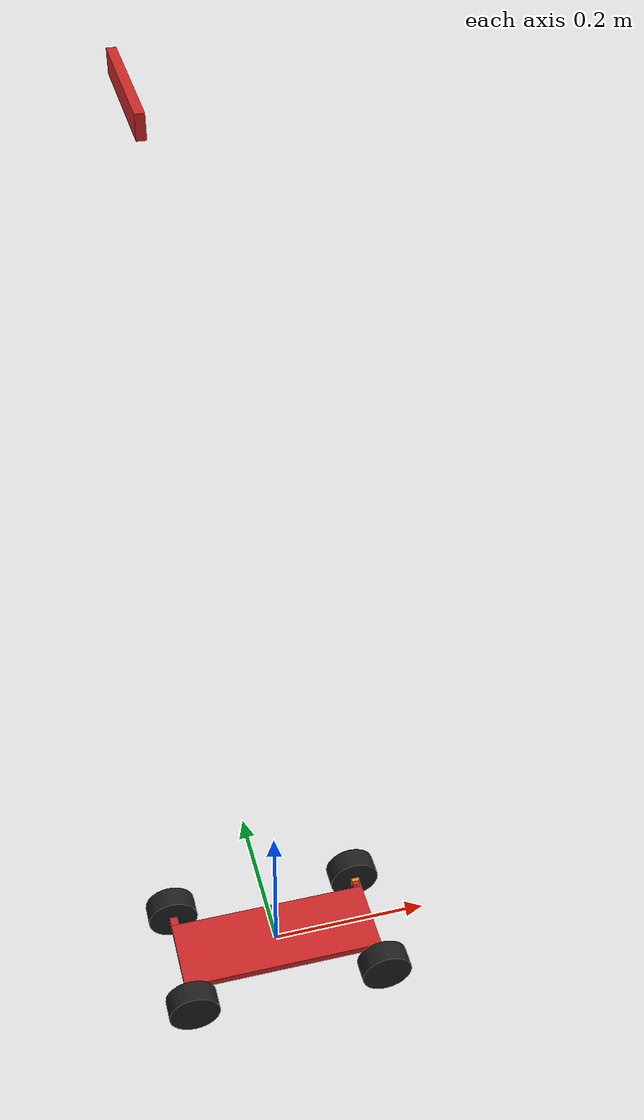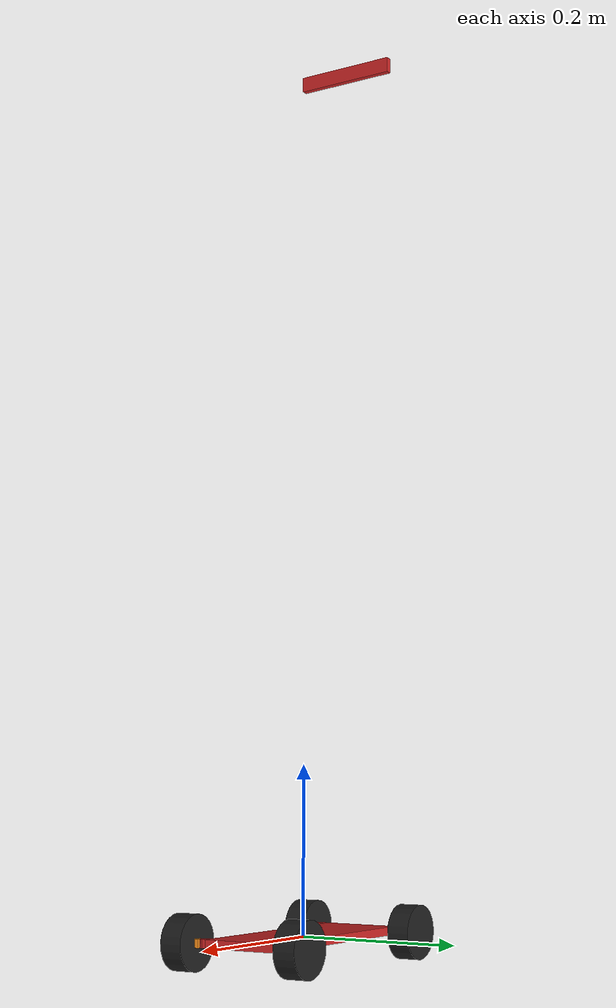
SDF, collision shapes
<sdf version='1.6'>
  <model name='simple_ackermann'>
    <link name='base_link'>
      <pose frame=''>0 0 0 0 -0 0</pose>
      <inertial>
        <pose frame=''>-0.04939 0 0.536585 0 -0 0</pose>
        <mass>2.05</mass>
        <inertia>
          <ixx>0.620661</ixx>
          <ixy>-3.246e-20</ixy>
          <ixz>0.0556707</ixz>
          <iyy>0.631179</iyy>
          <iyz>5.81767e-20</iyz>
          <izz>0.0123103</izz>
        </inertia>
      </inertial>
      <collision name='base_link_collision'>
        <pose frame=''>0 0 0 0 -0 0</pose>
        <geometry>
          <box>
            <size>0.26 0.095 0.01</size>
          </box>
        </geometry>
        <surface>
          <contact>
            <ode/>
          </contact>
          <friction>
            <ode/>
          </friction>
        </surface>
      </collision>
      <collision name='base_link_fixed_joint_lump__collision_collision_1'>
        <pose frame=''>-0.1 0 1.1 0 -0 0</pose>
        <geometry>
          <box>
            <size>0.0078 0.13 0.0192</size>
          </box>
        </geometry>
      </collision>
      <collision name='base_link_fixed_joint_lump__left_front_wheelmount_box_collision_2'>
        <pose frame=''>0.125 0.05 0 0 -0 0</pose>
        <geometry>
          <box>
            <size>0.01 0.005 0.01</size>
          </box>
        </geometry>
        <surface>
          <contact>
            <ode/>
          </contact>
          <friction>
            <ode/>
          </friction>
        </surface>
      </collision>
      <collision name='base_link_fixed_joint_lump__left_front_wheelmount_cylinder_collision_3'>
        <pose frame=''>0.125 0.0525 0 0 -0 0</pose>
        <geometry>
          <cylinder>
            <length>0.01</length>
            <radius>0.005</radius>
          </cylinder>
        </geometry>
        <surface>
          <contact>
            <ode/>
          </contact>
          <friction>
            <ode/>
          </friction>
        </surface>
      </collision>
      <collision name='base_link_fixed_joint_lump__left_rear_wheelmount_collision_4'>
        <pose frame=''>-0.125 0.055 0 0 -0 0</pose>
        <geometry>
          <box>
            <size>0.01 0.015 0.01</size>
          </box>
        </geometry>
        <surface>
          <contact>
            <ode/>
          </contact>
          <friction>
            <ode/>
          </friction>
        </surface>
      </collision>
      <collision name='base_link_fixed_joint_lump__right_front_wheelmount_box_collision_5'>
        <pose frame=''>0.125 -0.05 0 0 -0 0</pose>
        <geometry>
          <box>
            <size>0.01 0.005 0.01</size>
          </box>
        </geometry>
        <surface>
          <contact>
            <ode/>
          </contact>
          <friction>
            <ode/>
          </friction>
        </surface>
      </collision>
      <collision name='base_link_fixed_joint_lump__right_front_wheelmount_cylinder_collision_6'>
        <pose frame=''>0.125 -0.0525 0 0 -0 0</pose>
        <geometry>
          <cylinder>
            <length>0.01</length>
            <radius>0.005</radius>
          </cylinder>
        </geometry>
        <surface>
          <contact>
            <ode/>
          </contact>
          <friction>
            <ode/>
          </friction>
        </surface>
      </collision>
      <collision name='base_link_fixed_joint_lump__right_rear_wheelmount_collision_7'>
        <pose frame=''>-0.125 -0.055 0 0 -0 0</pose>
        <geometry>
          <box>
            <size>0.01 0.015 0.01</size>
          </box>
        </geometry>
        <surface>
          <contact>
            <ode/>
          </contact>
          <friction>
            <ode/>
          </friction>
        </surface>
      </collision>
      <visual name='base_link_fixed_joint_lump__chassis_visual_visual'>
        <pose frame=''>0 0 0 0 -0 0</pose>
        <geometry>
          <box>
            <size>0.26 0.095 0.01</size>
          </box>
        </geometry>
      </visual>
      <visual name='base_link_fixed_joint_lump__visual_visual_1'>
        <pose frame=''>-0.1 0 1.1 0 -0 0</pose>
        <geometry>
          <mesh>
            <scale>1 1 1</scale>
            <uri>model://realsense_camera_ros/meshes/realsense.dae</uri>
          </mesh>
        </geometry>
      </visual>
      <visual name='base_link_fixed_joint_lump__left_front_wheelmount_box_visual_2'>
        <pose frame=''>0.125 0.05 0 0 -0 0</pose>
        <geometry>
          <box>
            <size>0.01 0.005 0.01</size>
          </box>
        </geometry>
        <material>
          <script>
            <name>Gazebo/Red</name>
            <uri>file://media/materials/scripts/gazebo.material</uri>
          </script>
        </material>
      </visual>
      <visual name='base_link_fixed_joint_lump__left_front_wheelmount_cylinder_visual_3'>
        <pose frame=''>0.125 0.0525 0 0 -0 0</pose>
        <geometry>
          <cylinder>
            <length>0.01</length>
            <radius>0.005</radius>
          </cylinder>
        </geometry>
        <material>
          <script>
            <name>Gazebo/Red</name>
            <uri>file://media/materials/scripts/gazebo.material</uri>
          </script>
        </material>
      </visual>
      <visual name='base_link_fixed_joint_lump__left_rear_wheelmount_visual_4'>
        <pose frame=''>-0.125 0.055 0 0 -0 0</pose>
        <geometry>
          <box>
            <size>0.01 0.015 0.01</size>
          </box>
        </geometry>
        <material>
          <script>
            <name>Gazebo/Red</name>
            <uri>file://media/materials/scripts/gazebo.material</uri>
          </script>
        </material>
      </visual>
      <visual name='base_link_fixed_joint_lump__right_front_wheelmount_box_visual_5'>
        <pose frame=''>0.125 -0.05 0 0 -0 0</pose>
        <geometry>
          <box>
            <size>0.01 0.005 0.01</size>
          </box>
        </geometry>
        <material>
          <script>
            <name>Gazebo/Red</name>
            <uri>file://media/materials/scripts/gazebo.material</uri>
          </script>
        </material>
      </visual>
      <visual name='base_link_fixed_joint_lump__right_front_wheelmount_cylinder_visual_6'>
        <pose frame=''>0.125 -0.0525 0 0 -0 0</pose>
        <geometry>
          <cylinder>
            <length>0.01</length>
            <radius>0.005</radius>
          </cylinder>
        </geometry>
        <material>
          <script>
            <name>Gazebo/Red</name>
            <uri>file://media/materials/scripts/gazebo.material</uri>
          </script>
        </material>
      </visual>
      <visual name='base_link_fixed_joint_lump__right_rear_wheelmount_visual_7'>
        <pose frame=''>-0.125 -0.055 0 0 -0 0</pose>
        <geometry>
          <box>
            <size>0.01 0.015 0.01</size>
          </box>
        </geometry>
        <material>
          <script>
            <name>Gazebo/Red</name>
            <uri>file://media/materials/scripts/gazebo.material</uri>
          </script>
        </material>
      </visual>
      <velocity_decay/>
      <velocity_decay/>
      <sensor name='color' type='camera'>
        <always_on>1</always_on>
        <update_rate>60</update_rate>
        <visualize>1</visualize>
        <camera name='rgb_camera'>
          <horizontal_fov>1.047</horizontal_fov>
          <image>
            <width>640</width>
            <height>480</height>
            <format>RGB_INT8</format>
          </image>
          <clip>
            <near>0.1</near>
            <far>100</far>
          </clip>
          <noise>
            <type>gaussian</type>
            <mean>0</mean>
            <stddev>0.007</stddev>
          </noise>
        </camera>
        <pose frame=''>-0.1 0 1.1 0 -0 0</pose>
      </sensor>
      <sensor name='ired1' type='camera'>
        <always_on>1</always_on>
        <update_rate>60</update_rate>
        <visualize>0</visualize>
        <camera name='ir_1_camera'>
          <horizontal_fov>1.047</horizontal_fov>
          <image>
            <width>640</width>
            <height>480</height>
            <format>L_INT8</format>
          </image>
          <clip>
            <near>0.1</near>
            <far>100</far>
          </clip>
          <noise>
            <type>gaussian</type>
            <mean>0</mean>
            <stddev>0.007</stddev>
          </noise>
        </camera>
        <pose frame=''>-0.1 0 1.1 0 -0 0</pose>
      </sensor>
      <sensor name='ired2' type='camera'>
        <always_on>1</always_on>
        <update_rate>60</update_rate>
        <visualize>0</visualize>
        <camera name='ir_2_camera'>
          <horizontal_fov>1.047</horizontal_fov>
          <image>
            <width>640</width>
            <height>480</height>
            <format>L_INT8</format>
          </image>
          <clip>
            <near>0.1</near>
            <far>100</far>
          </clip>
          <noise>
            <type>gaussian</type>
            <mean>0</mean>
            <stddev>0.007</stddev>
          </noise>
        </camera>
        <pose frame=''>-0.1 0 1.1 0 -0 0</pose>
      </sensor>
      <sensor name='depth' type='depth'>
        <always_on>1</always_on>
        <update_rate>60</update_rate>
        <visualize>0</visualize>
        <camera name='depth_camera'>
          <horizontal_fov>1.047</horizontal_fov>
          <image>
            <width>640</width>
            <height>480</height>
          </image>
          <clip>
            <near>0.1</near>
            <far>100</far>
          </clip>
          <noise>
            <type>gaussian</type>
            <mean>0</mean>
            <stddev>0.007</stddev>
          </noise>
        </camera>
        <pose frame=''>-0.1 0 1.1 0 -0 0</pose>
      </sensor>
      <velocity_decay/>
      <velocity_decay/>
      <velocity_decay/>
      <velocity_decay/>
      <velocity_decay/>
      <gravity>1</gravity>
      <velocity_decay/>
    </link>
    <link name='left_kingpin'>
      <pose frame=''>0.125 0.0525 0 0 -0 0</pose>
      <inertial>
        <pose frame=''>0 0.0075 0 0 -0 0</pose>
        <mass>0.005</mass>
        <inertia>
          <ixx>5.20833e-08</ixx>
          <ixy>0</ixy>
          <ixz>0</ixz>
          <iyy>8.33333e-08</iyy>
          <iyz>0</iyz>
          <izz>5.20833e-08</izz>
        </inertia>
      </inertial>
      <collision name='left_kingpin_collision'>
        <pose frame=''>0 0.0075 0 0 -0 0</pose>
        <geometry>
          <box>
            <size>0.01 0.005 0.01</size>
          </box>
        </geometry>
        <surface>
          <contact>
            <ode/>
          </contact>
          <friction>
            <ode/>
          </friction>
        </surface>
      </collision>
      <visual name='left_kingpin_visual'>
        <pose frame=''>0 0.0075 0 0 -0 0</pose>
        <geometry>
          <box>
            <size>0.01 0.005 0.01</size>
          </box>
        </geometry>
        <material>
          <script>
            <name>Gazebo/Orange</name>
            <uri>file://media/materials/scripts/gazebo.material</uri>
          </script>
        </material>
      </visual>
      <gravity>1</gravity>
      <velocity_decay/>
    </link>
    <joint name='left_front_wheelmount_cylinder_to_left_kingpin' type='revolute'>
      <child>left_kingpin</child>
      <parent>base_link</parent>
      <axis>
        <xyz>0 0 1</xyz>
        <limit>
          <lower>-0.41</lower>
          <upper>0.41</upper>
          <effort>100</effort>
          <velocity>100</velocity>
        </limit>
        <dynamics>
          <spring_reference>0</spring_reference>
          <spring_stiffness>0</spring_stiffness>
        </dynamics>
        <use_parent_model_frame>1</use_parent_model_frame>
      </axis>
      <physics>
        <ode>
          <limit>
            <cfm>0</cfm>
            <erp>0.2</erp>
          </limit>
        </ode>
      </physics>
    </joint>
    <link name='left_front_wheel'>
      <pose frame=''>0.125 0.0625 0 0 -0 0</pose>
      <inertial>
        <pose frame=''>0 0.01375 0 1.5708 -0 0</pose>
        <mass>0.01</mass>
        <inertia>
          <ixx>3.27083e-06</ixx>
          <ixy>0</ixy>
          <ixz>0</ixz>
          <iyy>3.27083e-06</iyy>
          <iyz>0</iyz>
          <izz>5.28125e-06</izz>
        </inertia>
      </inertial>
      <collision name='left_front_wheel_collision'>
        <pose frame=''>0 0.01375 0 1.5708 -0 0</pose>
        <geometry>
          <cylinder>
            <length>0.0275</length>
            <radius>0.0325</radius>
          </cylinder>
        </geometry>
        <surface>
          <contact>
            <ode>
              <kp>100000</kp>
              <kd>10</kd>
            </ode>
          </contact>
          <friction>
            <ode>
              <mu>10</mu>
              <mu2>10</mu2>
            </ode>
          </friction>
        </surface>
      </collision>
      <visual name='left_front_wheel_visual'>
        <pose frame=''>0 0.01375 0 1.5708 -0 0</pose>
        <geometry>
          <cylinder>
            <length>0.0275</length>
            <radius>0.0325</radius>
          </cylinder>
        </geometry>
        <material>
          <script>
            <name>Gazebo/Black</name>
            <uri>file://media/materials/scripts/gazebo.material</uri>
          </script>
        </material>
      </visual>
      <gravity>1</gravity>
      <velocity_decay/>
    </link>
    <joint name='left_kingpin_to_left_front_wheel' type='revolute'>
      <child>left_front_wheel</child>
      <parent>left_kingpin</parent>
      <axis>
        <xyz>0 1 0</xyz>
        <limit>
          <lower>-1e+16</lower>
          <upper>1e+16</upper>
        </limit>
        <dynamics>
          <spring_reference>0</spring_reference>
          <spring_stiffness>0</spring_stiffness>
        </dynamics>
        <use_parent_model_frame>1</use_parent_model_frame>
      </axis>
    </joint>
    <link name='left_rear_wheel'>
      <pose frame=''>-0.125 0.06 0 0 -0 0</pose>
      <inertial>
        <pose frame=''>0 0.01375 0 1.5708 -0 0</pose>
        <mass>0.01</mass>
        <inertia>
          <ixx>3.27083e-06</ixx>
          <ixy>0</ixy>
          <ixz>0</ixz>
          <iyy>3.27083e-06</iyy>
          <iyz>0</iyz>
          <izz>5.28125e-06</izz>
        </inertia>
      </inertial>
      <collision name='left_rear_wheel_collision'>
        <pose frame=''>0 0.01375 0 1.5708 -0 0</pose>
        <geometry>
          <cylinder>
            <length>0.0275</length>
            <radius>0.0325</radius>
          </cylinder>
        </geometry>
        <surface>
          <contact>
            <ode>
              <kp>1e+06</kp>
              <kd>10</kd>
            </ode>
          </contact>
          <friction>
            <ode>
              <mu>10</mu>
              <mu2>10</mu2>
            </ode>
          </friction>
        </surface>
      </collision>
      <visual name='left_rear_wheel_visual'>
        <pose frame=''>0 0.01375 0 1.5708 -0 0</pose>
        <geometry>
          <cylinder>
            <length>0.0275</length>
            <radius>0.0325</radius>
          </cylinder>
        </geometry>
        <material>
          <script>
            <name>Gazebo/Black</name>
            <uri>file://media/materials/scripts/gazebo.material</uri>
          </script>
        </material>
      </visual>
      <gravity>1</gravity>
      <velocity_decay/>
    </link>
    <joint name='left_rear_wheel_to_mount' type='revolute'>
      <child>left_rear_wheel</child>
      <parent>base_link</parent>
      <axis>
        <xyz>0 1 0</xyz>
        <limit>
          <lower>-1e+16</lower>
          <upper>1e+16</upper>
        </limit>
        <dynamics>
          <spring_reference>0</spring_reference>
          <spring_stiffness>0</spring_stiffness>
        </dynamics>
        <use_parent_model_frame>1</use_parent_model_frame>
      </axis>
    </joint>
    <link name='right_kingpin'>
      <pose frame=''>0.125 -0.0525 0 0 -0 0</pose>
      <inertial>
        <pose frame=''>0 -0.0075 0 0 -0 0</pose>
        <mass>0.005</mass>
        <inertia>
          <ixx>5.20833e-08</ixx>
          <ixy>0</ixy>
          <ixz>0</ixz>
          <iyy>8.33333e-08</iyy>
          <iyz>0</iyz>
          <izz>5.20833e-08</izz>
        </inertia>
      </inertial>
      <collision name='right_kingpin_collision'>
        <pose frame=''>0 -0.0075 0 0 -0 0</pose>
        <geometry>
          <box>
            <size>0.01 0.005 0.01</size>
          </box>
        </geometry>
        <surface>
          <contact>
            <ode/>
          </contact>
          <friction>
            <ode/>
          </friction>
        </surface>
      </collision>
      <visual name='right_kingpin_visual'>
        <pose frame=''>0 -0.0075 0 0 -0 0</pose>
        <geometry>
          <box>
            <size>0.01 0.005 0.01</size>
          </box>
        </geometry>
        <material>
          <script>
            <name>Gazebo/Orange</name>
            <uri>file://media/materials/scripts/gazebo.material</uri>
          </script>
        </material>
      </visual>
      <gravity>1</gravity>
      <velocity_decay/>
    </link>
    <joint name='right_front_wheelmount_cylinder_to_right_kingpin' type='revolute'>
      <child>right_kingpin</child>
      <parent>base_link</parent>
      <axis>
        <xyz>0 0 1</xyz>
        <limit>
          <lower>-0.41</lower>
          <upper>0.41</upper>
          <effort>100</effort>
          <velocity>100</velocity>
        </limit>
        <dynamics>
          <spring_reference>0</spring_reference>
          <spring_stiffness>0</spring_stiffness>
        </dynamics>
        <use_parent_model_frame>1</use_parent_model_frame>
      </axis>
      <physics>
        <ode>
          <limit>
            <cfm>0</cfm>
            <erp>0.2</erp>
          </limit>
        </ode>
      </physics>
    </joint>
    <link name='right_front_wheel'>
      <pose frame=''>0.125 -0.0625 0 0 -0 0</pose>
      <inertial>
        <pose frame=''>0 -0.01375 0 1.5708 -0 0</pose>
        <mass>0.01</mass>
        <inertia>
          <ixx>3.27083e-06</ixx>
          <ixy>0</ixy>
          <ixz>0</ixz>
          <iyy>3.27083e-06</iyy>
          <iyz>0</iyz>
          <izz>5.28125e-06</izz>
        </inertia>
      </inertial>
      <collision name='right_front_wheel_collision'>
        <pose frame=''>0 -0.01375 0 1.5708 -0 0</pose>
        <geometry>
          <cylinder>
            <length>0.0275</length>
            <radius>0.0325</radius>
          </cylinder>
        </geometry>
        <surface>
          <contact>
            <ode>
              <kp>100000</kp>
              <kd>10</kd>
            </ode>
          </contact>
          <friction>
            <ode>
              <mu>10</mu>
              <mu2>10</mu2>
            </ode>
          </friction>
        </surface>
      </collision>
      <visual name='right_front_wheel_visual'>
        <pose frame=''>0 -0.01375 0 1.5708 -0 0</pose>
        <geometry>
          <cylinder>
            <length>0.0275</length>
            <radius>0.0325</radius>
          </cylinder>
        </geometry>
        <material>
          <script>
            <name>Gazebo/Black</name>
            <uri>file://media/materials/scripts/gazebo.material</uri>
          </script>
        </material>
      </visual>
      <gravity>1</gravity>
      <velocity_decay/>
    </link>
    <joint name='right_kingpin_to_right_front_wheel' type='revolute'>
      <child>right_front_wheel</child>
      <parent>right_kingpin</parent>
      <axis>
        <xyz>0 1 0</xyz>
        <limit>
          <lower>-1e+16</lower>
          <upper>1e+16</upper>
        </limit>
        <dynamics>
          <spring_reference>0</spring_reference>
          <spring_stiffness>0</spring_stiffness>
        </dynamics>
        <use_parent_model_frame>1</use_parent_model_frame>
      </axis>
    </joint>
    <link name='right_rear_wheel'>
      <pose frame=''>-0.125 -0.06 0 0 -0 0</pose>
      <inertial>
        <pose frame=''>0 -0.01375 0 1.5708 -0 0</pose>
        <mass>0.01</mass>
        <inertia>
          <ixx>3.27083e-06</ixx>
          <ixy>0</ixy>
          <ixz>0</ixz>
          <iyy>3.27083e-06</iyy>
          <iyz>0</iyz>
          <izz>5.28125e-06</izz>
        </inertia>
      </inertial>
      <collision name='right_rear_wheel_collision'>
        <pose frame=''>0 -0.01375 0 1.5708 -0 0</pose>
        <geometry>
          <cylinder>
            <length>0.0275</length>
            <radius>0.0325</radius>
          </cylinder>
        </geometry>
        <surface>
          <contact>
            <ode>
              <kp>1e+06</kp>
              <kd>10</kd>
            </ode>
          </contact>
          <friction>
            <ode>
              <mu>10</mu>
              <mu2>10</mu2>
            </ode>
          </friction>
        </surface>
      </collision>
      <visual name='right_rear_wheel_visual'>
        <pose frame=''>0 -0.01375 0 1.5708 -0 0</pose>
        <geometry>
          <cylinder>
            <length>0.0275</length>
            <radius>0.0325</radius>
          </cylinder>
        </geometry>
        <material>
          <script>
            <name>Gazebo/Black</name>
            <uri>file://media/materials/scripts/gazebo.material</uri>
          </script>
        </material>
      </visual>
      <gravity>1</gravity>
      <velocity_decay/>
    </link>
    <joint name='right_rear_wheel_to_mount' type='revolute'>
      <child>right_rear_wheel</child>
      <parent>base_link</parent>
      <axis>
        <xyz>0 1 0</xyz>
        <limit>
          <lower>-1e+16</lower>
          <upper>1e+16</upper>
        </limit>
        <dynamics>
          <spring_reference>0</spring_reference>
          <spring_stiffness>0</spring_stiffness>
        </dynamics>
        <use_parent_model_frame>1</use_parent_model_frame>
      </axis>
    </joint>
    <plugin name='realsense_plugin' filename='librealsense_gazebo_plugin.so'/>
    <static>0</static>
    <plugin name='ackermanndrive_plugin' filename='libackermanndrive_plugin.so'>
      <rosDebugLevel>Debug</rosDebugLevel>
      <robotNamespace>ackermann</robotNamespace>
      <CommandTopic>command</CommandTopic>
      <OdometryTopicEncoder>odometry_encoder</OdometryTopicEncoder>
      <OdometryTopicGodview>odometry_godview</OdometryTopicGodview>
      <odometryFrame>odom</odometryFrame>
      <robotBaseFrame>base_link</robotBaseFrame>
      <Wheelbase>0.26</Wheelbase>
      <Track>0.1525</Track>
      <SteeringWidth>0.095</SteeringWidth>
      <Wheeldiameter>0.065</Wheeldiameter>
      <Steeringvelocity>25.0</Steeringvelocity>
      <Streeringtorque>1.0</Streeringtorque>
      <Steeringangle>0.4</Steeringangle>
      <Wheeltorque>0.1</Wheeltorque>
      <LeftSteering>left_front_wheelmount_cylinder_to_left_kingpin</LeftSteering>
      <RightSteering>right_front_wheelmount_cylinder_to_right_kingpin</RightSteering>
      <LeftFrontWheel>left_kingpin_to_left_front_wheel</LeftFrontWheel>
      <RightFrontWheel>right_kingpin_to_right_front_wheel</RightFrontWheel>
      <LeftRearWheel>left_rear_wheel_to_mount</LeftRearWheel>
      <RightRearWheel>right_rear_wheel_to_mount</RightRearWheel>
    </plugin>
  </model>
</sdf>
